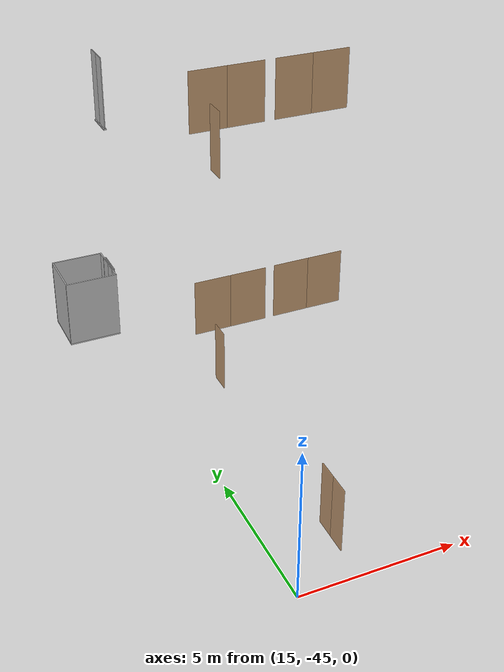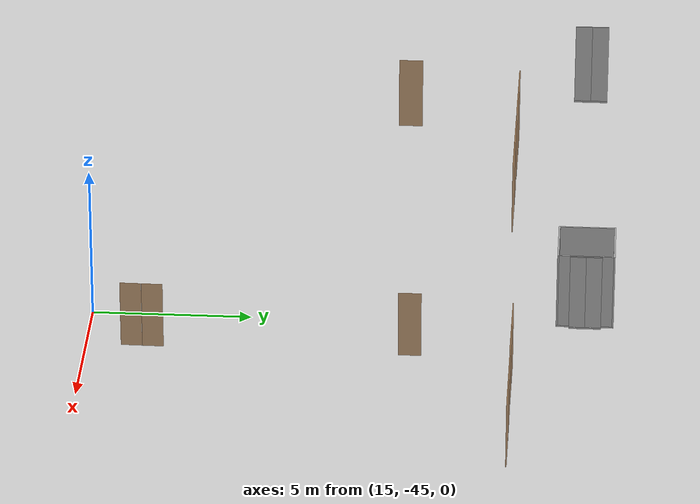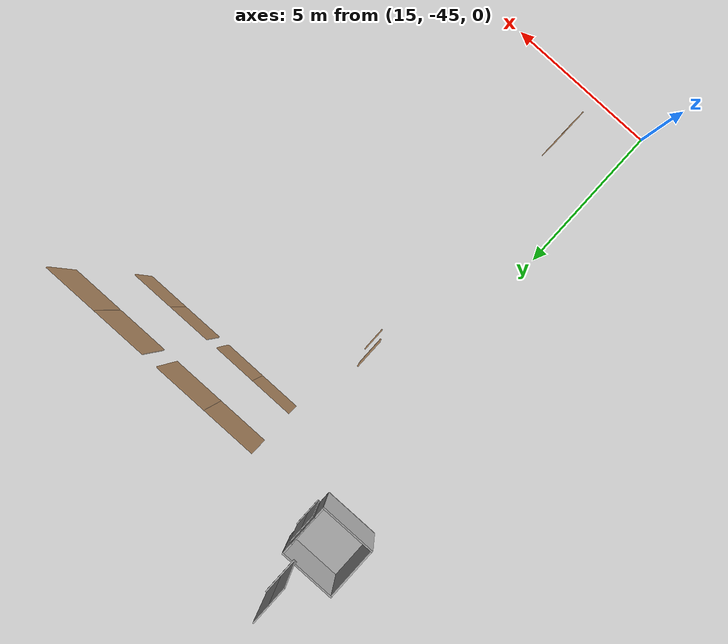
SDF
<sdf version="1.7">
 <world name="sim_world">
  <physics name="10ms" type="ode">
   <max_step_size>0.01</max_step_size>
   <real_time_factor>1.0</real_time_factor>
  </physics>
  <plugin filename="libgz-sim-physics-system.so" name="gz::sim::systems::Physics"/>
  <plugin filename="libgz-sim-user-commands-system.so" name="gz::sim::systems::UserCommands"/>
  <plugin filename="libgz-sim-scene-broadcaster-system.so" name="gz::sim::systems::SceneBroadcaster"/>
  <plugin filename="libdoor.so" name="door"/>
  <plugin filename="liblift.so" name="lift"/>
  <scene><ambient>1 1 1</ambient><background>0.8 0.8 0.8</background><grid>false</grid></scene>
  <light type="directional" name="sun">
   <pose>0 0 10 0 0 0</pose>
   <diffuse>1 1 1 1</diffuse>
   <specular>0.2 0.2 0.2 1</specular>
   <attenuation>
    <range>1000</range>
    <constant>0.09</constant>
    <linear>0.001</linear>
    <quadratic>0.001</quadratic>
   </attenuation>
   <direction>-0.5 0.1 -0.9</direction>
  </light>
  <model name="door1">
   <pose>18.842917974145337 -31.723924154567847 0.0 0 0 -0.003592788182383454</pose>
   <link name="right">
    <pose>0.7104158282135676 0 1.11 0 0 0</pose>
    <visual name="right_visual">
     <geometry><box><size>1.4108316564271353 0.03 2.2</size></box></geometry>
     <material>
      <ambient>0.5 0.25 0 0.6</ambient>
      <diffuse>0.5 0.25 0 0.6</diffuse>
      <pbr><metal><metalness>0.0</metalness></metal></pbr>
     </material>
    </visual>
    <collision name="right_collision">
     <geometry><box><size>1.4108316564271353 0.03 2.2</size></box></geometry>
     <surface><contact><collide_bitmask>0x02</collide_bitmask></contact></surface>
    </collision>
    <inertial>
     <mass>50.0</mass>
     <inertia><ixx>20.17041666666667</ixx><iyy>28.460191511570564</iyy><izz>8.297274844903892</izz></inertia>
    </inertial>
   </link>
   <joint name="right_joint" type="revolute">
    <parent>world</parent>
    <child>right</child>
    <axis><xyz>0 0 1</xyz><limit><lower>0</lower><upper>1.57</upper></limit></axis>
    <pose>0.7104158282135676 0 0 0 0 0</pose>
   </joint>
   <link name="left">
    <pose>-0.7104158282135676 0 1.11 0 0 0</pose>
    <visual name="left_visual">
     <geometry><box><size>1.4108316564271353 0.03 2.2</size></box></geometry>
     <material>
      <ambient>0.5 0.25 0 0.6</ambient>
      <diffuse>0.5 0.25 0 0.6</diffuse>
      <pbr><metal><metalness>0.0</metalness></metal></pbr>
     </material>
    </visual>
    <collision name="left_collision">
     <geometry><box><size>1.4108316564271353 0.03 2.2</size></box></geometry>
     <surface><contact><collide_bitmask>0x02</collide_bitmask></contact></surface>
    </collision>
    <inertial>
     <mass>50.0</mass>
     <inertia><ixx>20.17041666666667</ixx><iyy>28.460191511570564</iyy><izz>8.297274844903892</izz></inertia>
    </inertial>
   </link>
   <joint name="left_joint" type="revolute">
    <parent>world</parent>
    <child>left</child>
    <axis><xyz>0 0 1</xyz><limit><lower>-1.57</lower><upper>0</upper></limit></axis>
    <pose>-0.7104158282135676 0 0 0 0 0</pose>
   </joint>
   <plugin name="register_component" filename="libregister_component.so">
    <component name="Door">
     <v_max_door>0.5</v_max_door>
     <a_max_door>0.3</a_max_door>
     <a_nom_door>0.15</a_nom_door>
     <dx_min_door>0.01</dx_min_door>
     <f_max_door>500.0</f_max_door>
     <ros_interface>true</ros_interface>
     <door name="door1" type="DoubleSwingDoor" left_joint_name="left_joint" right_joint_name="right_joint"/>
    </component>
   </plugin>
  </model>
  <model name="door2">
   <pose>22.032232399162368 -31.718819418365594 0.0 0 0 3.141592653589793</pose>
   <link name="right">
    <pose>0.707604274739194 0 1.11 0 0 0</pose>
    <visual name="right_visual">
     <geometry><box><size>1.405208549478388 0.03 2.2</size></box></geometry>
     <material>
      <ambient>0.5 0.25 0 0.6</ambient>
      <diffuse>0.5 0.25 0 0.6</diffuse>
      <pbr><metal><metalness>0.0</metalness></metal></pbr>
     </material>
    </visual>
    <collision name="right_collision">
     <geometry><box><size>1.405208549478388 0.03 2.2</size></box></geometry>
     <surface><contact><collide_bitmask>0x02</collide_bitmask></contact></surface>
    </collision>
    <inertial>
     <mass>50.0</mass>
     <inertia><ixx>20.17041666666667</ixx><iyy>28.39421278136315</iyy><izz>8.231296114696478</izz></inertia>
    </inertial>
   </link>
   <joint name="right_joint" type="revolute">
    <parent>world</parent>
    <child>right</child>
    <axis><xyz>0 0 -1</xyz><limit><lower>0</lower><upper>1.57</upper></limit></axis>
    <pose>0.707604274739194 0 0 0 0 0</pose>
   </joint>
   <link name="left">
    <pose>-0.707604274739194 0 1.11 0 0 0</pose>
    <visual name="left_visual">
     <geometry><box><size>1.405208549478388 0.03 2.2</size></box></geometry>
     <material>
      <ambient>0.5 0.25 0 0.6</ambient>
      <diffuse>0.5 0.25 0 0.6</diffuse>
      <pbr><metal><metalness>0.0</metalness></metal></pbr>
     </material>
    </visual>
    <collision name="left_collision">
     <geometry><box><size>1.405208549478388 0.03 2.2</size></box></geometry>
     <surface><contact><collide_bitmask>0x02</collide_bitmask></contact></surface>
    </collision>
    <inertial>
     <mass>50.0</mass>
     <inertia><ixx>20.17041666666667</ixx><iyy>28.39421278136315</iyy><izz>8.231296114696478</izz></inertia>
    </inertial>
   </link>
   <joint name="left_joint" type="revolute">
    <parent>world</parent>
    <child>left</child>
    <axis><xyz>0 0 -1</xyz><limit><lower>-1.57</lower><upper>0</upper></limit></axis>
    <pose>-0.707604274739194 0 0 0 0 0</pose>
   </joint>
   <plugin name="register_component" filename="libregister_component.so">
    <component name="Door">
     <v_max_door>0.5</v_max_door>
     <a_max_door>0.3</a_max_door>
     <a_nom_door>0.15</a_nom_door>
     <dx_min_door>0.01</dx_min_door>
     <f_max_door>500.0</f_max_door>
     <ros_interface>true</ros_interface>
     <door name="door2" type="DoubleSwingDoor" left_joint_name="left_joint" right_joint_name="right_joint"/>
    </component>
   </plugin>
  </model>
  <model name="door3">
   <pose>17.041875385878594 -34.91931079696262 0.0 0 0 1.5707963267948966</pose>
   <link name="right">
    <pose>0 0 1.11 0 0 0</pose>
    <visual name="right_visual">
     <geometry><box><size>0.7135486191115683 0.03 2.2</size></box></geometry>
     <material>
      <ambient>0.5 0.25 0 0.6</ambient>
      <diffuse>0.5 0.25 0 0.6</diffuse>
      <pbr><metal><metalness>0.0</metalness></metal></pbr>
     </material>
    </visual>
    <collision name="right_collision">
     <geometry><box><size>0.7135486191115683 0.03 2.2</size></box></geometry>
     <surface><contact><collide_bitmask>0x02</collide_bitmask></contact></surface>
    </collision>
    <inertial>
     <mass>50.0</mass>
     <inertia><ixx>20.17041666666667</ixx><iyy>22.28813179931678</iyy><izz>2.1252151326501085</izz></inertia>
    </inertial>
   </link>
   <joint name="right_joint" type="revolute">
    <parent>world</parent>
    <child>right</child>
    <axis><xyz>0 0 1</xyz><limit><lower>0</lower><upper>1.57</upper></limit></axis>
    <pose>0.36177430955578416 0 0 0 0 0</pose>
   </joint>
   <plugin name="register_component" filename="libregister_component.so">
    <component name="Door">
     <v_max_door>0.5</v_max_door>
     <a_max_door>0.3</a_max_door>
     <a_nom_door>0.15</a_nom_door>
     <dx_min_door>0.01</dx_min_door>
     <f_max_door>500.0</f_max_door>
     <ros_interface>true</ros_interface>
     <door name="door3" type="SwingDoor" left_joint_name="empty_joint" right_joint_name="right_joint"/>
    </component>
   </plugin>
  </model>
  <model name="door4">
   <pose>16.944503497571752 -43.24904365758805 0.0 0 0 1.5541321529719907</pose>
   <link name="right">
    <pose>0.33499231367601323 0 1.11 0 0 0</pose>
    <visual name="right_visual">
     <geometry><box><size>0.6599846273520265 0.03 2.2</size></box></geometry>
     <material>
      <ambient>0.5 0.25 0 0.6</ambient>
      <diffuse>0.5 0.25 0 0.6</diffuse>
      <pbr><metal><metalness>0.0</metalness></metal></pbr>
     </material>
    </visual>
    <collision name="right_collision">
     <geometry><box><size>0.6599846273520265 0.03 2.2</size></box></geometry>
     <surface><contact><collide_bitmask>0x02</collide_bitmask></contact></surface>
    </collision>
    <inertial>
     <mass>50.0</mass>
     <inertia><ixx>20.17041666666667</ixx><iyy>21.981582118087477</iyy><izz>1.8186654514208054</izz></inertia>
    </inertial>
   </link>
   <joint name="right_joint" type="revolute">
    <parent>world</parent>
    <child>right</child>
    <axis><xyz>0 0 1</xyz><limit><lower>0</lower><upper>1.57</upper></limit></axis>
    <pose>0.33499231367601323 0 0 0 0 0</pose>
   </joint>
   <link name="left">
    <pose>-0.33499231367601323 0 1.11 0 0 0</pose>
    <visual name="left_visual">
     <geometry><box><size>0.6599846273520265 0.03 2.2</size></box></geometry>
     <material>
      <ambient>0.5 0.25 0 0.6</ambient>
      <diffuse>0.5 0.25 0 0.6</diffuse>
      <pbr><metal><metalness>0.0</metalness></metal></pbr>
     </material>
    </visual>
    <collision name="left_collision">
     <geometry><box><size>0.6599846273520265 0.03 2.2</size></box></geometry>
     <surface><contact><collide_bitmask>0x02</collide_bitmask></contact></surface>
    </collision>
    <inertial>
     <mass>50.0</mass>
     <inertia><ixx>20.17041666666667</ixx><iyy>21.981582118087477</iyy><izz>1.8186654514208054</izz></inertia>
    </inertial>
   </link>
   <joint name="left_joint" type="revolute">
    <parent>world</parent>
    <child>left</child>
    <axis><xyz>0 0 1</xyz><limit><lower>-1.57</lower><upper>0</upper></limit></axis>
    <pose>-0.33499231367601323 0 0 0 0 0</pose>
   </joint>
   <plugin name="register_component" filename="libregister_component.so">
    <component name="Door">
     <v_max_door>0.5</v_max_door>
     <a_max_door>0.3</a_max_door>
     <a_nom_door>0.15</a_nom_door>
     <dx_min_door>0.01</dx_min_door>
     <f_max_door>500.0</f_max_door>
     <ros_interface>true</ros_interface>
     <door name="door4" type="DoubleSwingDoor" left_joint_name="left_joint" right_joint_name="right_joint"/>
    </component>
   </plugin>
  </model>
  <model name="door6">
   <pose>18.78676646756648 -31.65727521792319 8.0 0 0 -0.0021800277771673146</pose>
   <link name="right">
    <pose>0.7002427573334377 0 1.11 0 0 0</pose>
    <visual name="right_visual">
     <geometry><box><size>1.3904855146668753 0.03 2.2</size></box></geometry>
     <material>
      <ambient>0.5 0.25 0 0.6</ambient>
      <diffuse>0.5 0.25 0 0.6</diffuse>
      <pbr><metal><metalness>0.0</metalness></metal></pbr>
     </material>
    </visual>
    <collision name="right_collision">
     <geometry><box><size>1.3904855146668753 0.03 2.2</size></box></geometry>
     <surface><contact><collide_bitmask>0x02</collide_bitmask></contact></surface>
    </collision>
    <inertial>
     <mass>50.0</mass>
     <inertia><ixx>20.17041666666667</ixx><iyy>28.22270819374336</iyy><izz>8.059791527076689</izz></inertia>
    </inertial>
   </link>
   <joint name="right_joint" type="revolute">
    <parent>world</parent>
    <child>right</child>
    <axis><xyz>0 0 1</xyz><limit><lower>0</lower><upper>1.57</upper></limit></axis>
    <pose>0.7002427573334377 0 0 0 0 0</pose>
   </joint>
   <link name="left">
    <pose>-0.7002427573334377 0 1.11 0 0 0</pose>
    <visual name="left_visual">
     <geometry><box><size>1.3904855146668753 0.03 2.2</size></box></geometry>
     <material>
      <ambient>0.5 0.25 0 0.6</ambient>
      <diffuse>0.5 0.25 0 0.6</diffuse>
      <pbr><metal><metalness>0.0</metalness></metal></pbr>
     </material>
    </visual>
    <collision name="left_collision">
     <geometry><box><size>1.3904855146668753 0.03 2.2</size></box></geometry>
     <surface><contact><collide_bitmask>0x02</collide_bitmask></contact></surface>
    </collision>
    <inertial>
     <mass>50.0</mass>
     <inertia><ixx>20.17041666666667</ixx><iyy>28.22270819374336</iyy><izz>8.059791527076689</izz></inertia>
    </inertial>
   </link>
   <joint name="left_joint" type="revolute">
    <parent>world</parent>
    <child>left</child>
    <axis><xyz>0 0 1</xyz><limit><lower>-1.57</lower><upper>0</upper></limit></axis>
    <pose>-0.7002427573334377 0 0 0 0 0</pose>
   </joint>
   <plugin name="register_component" filename="libregister_component.so">
    <component name="Door">
     <v_max_door>0.5</v_max_door>
     <a_max_door>0.3</a_max_door>
     <a_nom_door>0.15</a_nom_door>
     <dx_min_door>0.01</dx_min_door>
     <f_max_door>500.0</f_max_door>
     <ros_interface>true</ros_interface>
     <door name="door6" type="DoubleSwingDoor" left_joint_name="left_joint" right_joint_name="right_joint"/>
    </component>
   </plugin>
  </model>
  <model name="door7">
   <pose>21.99220717025463 -31.66426317876326 8.0 0 0 3.1394126258126276</pose>
   <link name="right">
    <pose>0.7068090716638525 0 1.11 0 0 0</pose>
    <visual name="right_visual">
     <geometry><box><size>1.403618143327705 0.03 2.2</size></box></geometry>
     <material>
      <ambient>0.5 0.25 0 0.6</ambient>
      <diffuse>0.5 0.25 0 0.6</diffuse>
      <pbr><metal><metalness>0.0</metalness></metal></pbr>
     </material>
    </visual>
    <collision name="right_collision">
     <geometry><box><size>1.403618143327705 0.03 2.2</size></box></geometry>
     <surface><contact><collide_bitmask>0x02</collide_bitmask></contact></surface>
    </collision>
    <inertial>
     <mass>50.0</mass>
     <inertia><ixx>20.17041666666667</ixx><iyy>28.375599551161315</iyy><izz>8.212682884494642</izz></inertia>
    </inertial>
   </link>
   <joint name="right_joint" type="revolute">
    <parent>world</parent>
    <child>right</child>
    <axis><xyz>0 0 -1</xyz><limit><lower>0</lower><upper>1.57</upper></limit></axis>
    <pose>0.7068090716638525 0 0 0 0 0</pose>
   </joint>
   <link name="left">
    <pose>-0.7068090716638525 0 1.11 0 0 0</pose>
    <visual name="left_visual">
     <geometry><box><size>1.403618143327705 0.03 2.2</size></box></geometry>
     <material>
      <ambient>0.5 0.25 0 0.6</ambient>
      <diffuse>0.5 0.25 0 0.6</diffuse>
      <pbr><metal><metalness>0.0</metalness></metal></pbr>
     </material>
    </visual>
    <collision name="left_collision">
     <geometry><box><size>1.403618143327705 0.03 2.2</size></box></geometry>
     <surface><contact><collide_bitmask>0x02</collide_bitmask></contact></surface>
    </collision>
    <inertial>
     <mass>50.0</mass>
     <inertia><ixx>20.17041666666667</ixx><iyy>28.375599551161315</iyy><izz>8.212682884494642</izz></inertia>
    </inertial>
   </link>
   <joint name="left_joint" type="revolute">
    <parent>world</parent>
    <child>left</child>
    <axis><xyz>0 0 -1</xyz><limit><lower>-1.57</lower><upper>0</upper></limit></axis>
    <pose>-0.7068090716638525 0 0 0 0 0</pose>
   </joint>
   <plugin name="register_component" filename="libregister_component.so">
    <component name="Door">
     <v_max_door>0.5</v_max_door>
     <a_max_door>0.3</a_max_door>
     <a_nom_door>0.15</a_nom_door>
     <dx_min_door>0.01</dx_min_door>
     <f_max_door>500.0</f_max_door>
     <ros_interface>true</ros_interface>
     <door name="door7" type="DoubleSwingDoor" left_joint_name="left_joint" right_joint_name="right_joint"/>
    </component>
   </plugin>
  </model>
  <model name="door5">
   <pose>16.954624670447203 -34.931011413418545 8.0 0 0 1.568616299017729</pose>
   <link name="right">
    <pose>0 0 1.11 0 0 0</pose>
    <visual name="right_visual">
     <geometry><box><size>0.7084200033328207 0.03 2.2</size></box></geometry>
     <material>
      <ambient>0.5 0.25 0 0.6</ambient>
      <diffuse>0.5 0.25 0 0.6</diffuse>
      <pbr><metal><metalness>0.0</metalness></metal></pbr>
     </material>
    </visual>
    <collision name="right_collision">
     <geometry><box><size>0.7084200033328207 0.03 2.2</size></box></geometry>
     <surface><contact><collide_bitmask>0x02</collide_bitmask></contact></surface>
    </collision>
    <inertial>
     <mass>50.0</mass>
     <inertia><ixx>20.17041666666667</ixx><iyy>22.25774542134198</iyy><izz>2.0948287546753077</izz></inertia>
    </inertial>
   </link>
   <joint name="right_joint" type="revolute">
    <parent>world</parent>
    <child>right</child>
    <axis><xyz>0 0 1</xyz><limit><lower>0</lower><upper>1.57</upper></limit></axis>
    <pose>0.3592100016664104 0 0 0 0 0</pose>
   </joint>
   <plugin name="register_component" filename="libregister_component.so">
    <component name="Door">
     <v_max_door>0.5</v_max_door>
     <a_max_door>0.3</a_max_door>
     <a_nom_door>0.15</a_nom_door>
     <dx_min_door>0.01</dx_min_door>
     <f_max_door>500.0</f_max_door>
     <ros_interface>true</ros_interface>
     <door name="door5" type="SwingDoor" left_joint_name="empty_joint" right_joint_name="right_joint"/>
    </component>
   </plugin>
  </model>
  <model name="ShaftDoor_lift_L1_doors">
   <pose>14.952096951797797 -29.533635883367598 0.0 0 0 1.5707</pose>
   <link name="right_door">
    <pose>0.25 0 1.25 0 0 0</pose>
    <visual name="right_door_visual">
     <geometry><box><size>0.5 0.03 2.5</size></box></geometry>
     <material>
      <ambient>0.5 0.5 0.5 1</ambient>
      <diffuse>0.7 0.7 0.7 1</diffuse>
      <specular>0.6 0.6 0.6 1</specular>
      <emissive>0.1 0.1 0.1 1</emissive>
     </material>
    </visual>
    <collision name="right_door_collision">
     <geometry><box><size>0.5 0.03 2.5</size></box></geometry>
     <surface><contact><collide_bitmask>0x02</collide_bitmask></contact></surface>
    </collision>
   </link>
   <link name="left_door">
    <pose>-0.25 0 1.25 0 0 0</pose>
    <visual name="left_door_visual">
     <geometry><box><size>0.5 0.03 2.5</size></box></geometry>
     <material>
      <ambient>0.5 0.5 0.5 1</ambient>
      <diffuse>0.7 0.7 0.7 1</diffuse>
      <specular>0.6 0.6 0.6 1</specular>
      <emissive>0.1 0.1 0.1 1</emissive>
     </material>
    </visual>
    <collision name="left_door_collision">
     <geometry><box><size>0.5 0.03 2.5</size></box></geometry>
     <surface><contact><collide_bitmask>0x02</collide_bitmask></contact></surface>
    </collision>
   </link>
   <joint name="right_joint" type="prismatic">
    <parent>world</parent>
    <child>right_door</child>
    <axis><xyz>1 0 0</xyz><limit><lower>0</lower><upper>0.5</upper></limit></axis>
   </joint>
   <joint name="left_joint" type="prismatic">
    <parent>world</parent>
    <child>left_door</child>
    <axis><xyz>1 0 0</xyz><limit><lower>-0.5</lower><upper>0</upper></limit></axis>
   </joint>
   <link name="ramp">
    <pose>0 0 -0.025 0 0 0</pose>
    <visual name="ramp_visual">
     <geometry><box><size>1.0 0.1 0.05</size></box></geometry>
     <material>
      <ambient>0.5 0.5 0.5 1</ambient>
      <diffuse>0.7 0.7 0.7 1</diffuse>
      <specular>0.6 0.6 0.6 1</specular>
      <emissive>0.1 0.1 0.1 1</emissive>
     </material>
    </visual>
    <collision name="ramp_collision">
     <geometry><box><size>1.0 0.1 0.05</size></box></geometry>
     <surface><contact><collide_bitmask>0x02</collide_bitmask></contact></surface>
    </collision>
   </link>
   <joint name="ramp_joint" type="fixed"><parent>world</parent><child>ramp</child></joint>
   <plugin name="register_component" filename="libregister_component.so">
    <component name="Door">
     <v_max_door>0.3</v_max_door>
     <a_max_door>0.2</a_max_door>
     <a_nom_door>0.1</a_nom_door>
     <dx_min_door>0.0001</dx_min_door>
     <f_max_door>35.0</f_max_door>
     <door left_joint_name="left_joint" name="ShaftDoor_lift_L1_doors" right_joint_name="right_joint" type="DoubleSlidingDoor"/>
    </component>
   </plugin>
  </model>
  <model name="ShaftDoor_lift_L2_doors">
   <pose>14.952096951797797 -29.533635883367598 8.0 0 0 1.5707</pose>
   <link name="right_door">
    <pose>0.25 0 1.25 0 0 0</pose>
    <visual name="right_door_visual">
     <geometry><box><size>0.5 0.03 2.5</size></box></geometry>
     <material>
      <ambient>0.5 0.5 0.5 1</ambient>
      <diffuse>0.7 0.7 0.7 1</diffuse>
      <specular>0.6 0.6 0.6 1</specular>
      <emissive>0.1 0.1 0.1 1</emissive>
     </material>
    </visual>
    <collision name="right_door_collision">
     <geometry><box><size>0.5 0.03 2.5</size></box></geometry>
     <surface><contact><collide_bitmask>0x02</collide_bitmask></contact></surface>
    </collision>
   </link>
   <link name="left_door">
    <pose>-0.25 0 1.25 0 0 0</pose>
    <visual name="left_door_visual">
     <geometry><box><size>0.5 0.03 2.5</size></box></geometry>
     <material>
      <ambient>0.5 0.5 0.5 1</ambient>
      <diffuse>0.7 0.7 0.7 1</diffuse>
      <specular>0.6 0.6 0.6 1</specular>
      <emissive>0.1 0.1 0.1 1</emissive>
     </material>
    </visual>
    <collision name="left_door_collision">
     <geometry><box><size>0.5 0.03 2.5</size></box></geometry>
     <surface><contact><collide_bitmask>0x02</collide_bitmask></contact></surface>
    </collision>
   </link>
   <joint name="right_joint" type="prismatic">
    <parent>world</parent>
    <child>right_door</child>
    <axis><xyz>1 0 0</xyz><limit><lower>0</lower><upper>0.5</upper></limit></axis>
   </joint>
   <joint name="left_joint" type="prismatic">
    <parent>world</parent>
    <child>left_door</child>
    <axis><xyz>1 0 0</xyz><limit><lower>-0.5</lower><upper>0</upper></limit></axis>
   </joint>
   <link name="ramp">
    <pose>0 0 -0.025 0 0 0</pose>
    <visual name="ramp_visual">
     <geometry><box><size>1.0 0.1 0.05</size></box></geometry>
     <material>
      <ambient>0.5 0.5 0.5 1</ambient>
      <diffuse>0.7 0.7 0.7 1</diffuse>
      <specular>0.6 0.6 0.6 1</specular>
      <emissive>0.1 0.1 0.1 1</emissive>
     </material>
    </visual>
    <collision name="ramp_collision">
     <geometry><box><size>1.0 0.1 0.05</size></box></geometry>
     <surface><contact><collide_bitmask>0x02</collide_bitmask></contact></surface>
    </collision>
   </link>
   <joint name="ramp_joint" type="fixed"><parent>world</parent><child>ramp</child></joint>
   <plugin name="register_component" filename="libregister_component.so">
    <component name="Door">
     <v_max_door>0.3</v_max_door>
     <a_max_door>0.2</a_max_door>
     <a_nom_door>0.1</a_nom_door>
     <dx_min_door>0.0001</dx_min_door>
     <f_max_door>35.0</f_max_door>
     <door left_joint_name="left_joint" name="ShaftDoor_lift_L2_doors" right_joint_name="right_joint" type="DoubleSlidingDoor"/>
    </component>
   </plugin>
  </model>
  <model name="lift">
   <link name="platform">
    <inertial><mass>1200</mass><inertia><ixx>361.25</ixx><iyy>324.25</iyy><izz>685.0</izz></inertia></inertial>
    <visual name="floor_visual">
     <pose>0 0 -0.025 0 0 0</pose>
     <geometry><box><size>1.9 1.8 0.05</size></box></geometry>
     <material>
      <ambient>0.5 0.5 0.5 1</ambient>
      <diffuse>0.7 0.7 0.7 1</diffuse>
      <specular>0.6 0.6 0.6 1</specular>
      <emissive>0.1 0.1 0.1 1</emissive>
     </material>
    </visual>
    <collision name="floor_collision">
     <pose>0 0 -0.025 0 0 0</pose>
     <geometry><box><size>1.9 1.8 0.05</size></box></geometry>
     <surface><contact><collide_bitmask>0x01</collide_bitmask></contact></surface>
    </collision>
    <visual name="frontwall1_visual">
     <pose>0.0 0.875 1.25 0 0 0</pose>
     <geometry><box><size>1.9 0.05 2.5</size></box></geometry>
     <material>
      <ambient>0.5 0.5 0.5 1</ambient>
      <diffuse>0.7 0.7 0.7 1</diffuse>
      <specular>0.6 0.6 0.6 1</specular>
      <emissive>0.1 0.1 0.1 1</emissive>
     </material>
    </visual>
    <collision name="frontwall1_collision">
     <pose>0.0 0.875 1.25 0 0 0</pose>
     <geometry><box><size>1.9 0.05 2.5</size></box></geometry>
     <surface><contact><collide_bitmask>0x01</collide_bitmask></contact></surface>
    </collision>
    <visual name="backwall1_visual">
     <pose>0.0 -0.875 1.25 0 0 0</pose>
     <geometry><box><size>1.9 0.05 2.5</size></box></geometry>
     <material>
      <ambient>0.5 0.5 0.5 1</ambient>
      <diffuse>0.7 0.7 0.7 1</diffuse>
      <specular>0.6 0.6 0.6 1</specular>
      <emissive>0.1 0.1 0.1 1</emissive>
     </material>
    </visual>
    <collision name="backwall1_collision">
     <pose>0.0 -0.875 1.25 0 0 0</pose>
     <geometry><box><size>1.9 0.05 2.5</size></box></geometry>
     <surface><contact><collide_bitmask>0x01</collide_bitmask></contact></surface>
    </collision>
    <visual name="leftwall1_visual">
     <pose>-0.9249999999999999 0.0 1.25 0 0 1.5707963267948966</pose>
     <geometry><box><size>1.7 0.05 2.5</size></box></geometry>
     <material>
      <ambient>0.5 0.5 0.5 1</ambient>
      <diffuse>0.7 0.7 0.7 1</diffuse>
      <specular>0.6 0.6 0.6 1</specular>
      <emissive>0.1 0.1 0.1 1</emissive>
     </material>
    </visual>
    <collision name="leftwall1_collision">
     <pose>-0.9249999999999999 0.0 1.25 0 0 1.5707963267948966</pose>
     <geometry><box><size>1.7 0.05 2.5</size></box></geometry>
     <surface><contact><collide_bitmask>0x01</collide_bitmask></contact></surface>
    </collision>
    <visual name="rightwall1_visual">
     <pose>0.9249999999999999 -0.675 1.25 0 0 1.5707963267948966</pose>
     <geometry><box><size>0.35 0.05 2.5</size></box></geometry>
     <material>
      <ambient>0.5 0.5 0.5 1</ambient>
      <diffuse>0.7 0.7 0.7 1</diffuse>
      <specular>0.6 0.6 0.6 1</specular>
      <emissive>0.1 0.1 0.1 1</emissive>
     </material>
    </visual>
    <collision name="rightwall1_collision">
     <pose>0.9249999999999999 -0.675 1.25 0 0 1.5707963267948966</pose>
     <geometry><box><size>0.35 0.05 2.5</size></box></geometry>
     <surface><contact><collide_bitmask>0x01</collide_bitmask></contact></surface>
    </collision>
    <visual name="rightwall2_visual">
     <pose>0.9249999999999999 0.675 1.25 0 0 1.5707963267948966</pose>
     <geometry><box><size>0.35 0.05 2.5</size></box></geometry>
     <material>
      <ambient>0.5 0.5 0.5 1</ambient>
      <diffuse>0.7 0.7 0.7 1</diffuse>
      <specular>0.6 0.6 0.6 1</specular>
      <emissive>0.1 0.1 0.1 1</emissive>
     </material>
    </visual>
    <collision name="rightwall2_collision">
     <pose>0.9249999999999999 0.675 1.25 0 0 1.5707963267948966</pose>
     <geometry><box><size>0.35 0.05 2.5</size></box></geometry>
     <surface><contact><collide_bitmask>0x01</collide_bitmask></contact></surface>
    </collision>
   </link>
   <joint name="cabin_joint" type="prismatic">
    <parent>world</parent>
    <child>platform</child>
    <axis><xyz>0 0 1</xyz></axis>
   </joint>
   <model name="CabinDoor_lift_doors">
    <pose>0.9249999999999999 0.0 0 0 0 1.5707</pose>
    <link name="right_door">
     <pose>0.25 0 1.25 0 0 0</pose>
     <visual name="right_door_visual">
      <geometry><box><size>0.5 0.03 2.5</size></box></geometry>
      <material>
       <ambient>0.5 0.5 0.5 1</ambient>
       <diffuse>0.7 0.7 0.7 1</diffuse>
       <specular>0.6 0.6 0.6 1</specular>
       <emissive>0.1 0.1 0.1 1</emissive>
      </material>
     </visual>
     <collision name="right_door_collision">
      <geometry><box><size>0.5 0.03 2.5</size></box></geometry>
      <surface><contact><collide_bitmask>0x02</collide_bitmask></contact></surface>
     </collision>
    </link>
    <link name="left_door">
     <pose>-0.25 0 1.25 0 0 0</pose>
     <visual name="left_door_visual">
      <geometry><box><size>0.5 0.03 2.5</size></box></geometry>
      <material>
       <ambient>0.5 0.5 0.5 1</ambient>
       <diffuse>0.7 0.7 0.7 1</diffuse>
       <specular>0.6 0.6 0.6 1</specular>
       <emissive>0.1 0.1 0.1 1</emissive>
      </material>
     </visual>
     <collision name="left_door_collision">
      <geometry><box><size>0.5 0.03 2.5</size></box></geometry>
      <surface><contact><collide_bitmask>0x02</collide_bitmask></contact></surface>
     </collision>
    </link>
    <plugin name="register_component" filename="libregister_component.so">
     <component name="Door">
      <v_max_door>0.3</v_max_door>
      <a_max_door>0.2</a_max_door>
      <a_nom_door>0.1</a_nom_door>
      <dx_min_door>0.0001</dx_min_door>
      <f_max_door>35.0</f_max_door>
      <door left_joint_name="CabinDoor_lift_doors_left_joint" name="CabinDoor_lift_doors" right_joint_name="CabinDoor_lift_doors_right_joint" type="DoubleSlidingDoor"/>
     </component>
    </plugin>
   </model>
   <joint name="CabinDoor_lift_doors_right_joint" type="prismatic">
    <parent>platform</parent>
    <child>CabinDoor_lift_doors::right_door</child>
    <axis><xyz>1 0 0</xyz><limit><lower>0</lower><upper>0.5</upper></limit></axis>
   </joint>
   <joint name="CabinDoor_lift_doors_left_joint" type="prismatic">
    <parent>platform</parent>
    <child>CabinDoor_lift_doors::left_door</child>
    <axis><xyz>1 0 0</xyz><limit><lower>-0.5</lower><upper>0</upper></limit></axis>
   </joint>
   <plugin name="register_component" filename="libregister_component.so">
    <component name="Lift">
     <lift_name>lift</lift_name>
     <floor name="L1" elevation="0.0">
      <door_pair cabin_door="CabinDoor_lift_doors" shaft_door="ShaftDoor_lift_L1_doors"/>
     </floor>
     <floor name="L2" elevation="8.0">
      <door_pair cabin_door="CabinDoor_lift_doors" shaft_door="ShaftDoor_lift_L2_doors"/>
     </floor>
     <initial_floor>L1</initial_floor>
     <v_max_cabin>2.0</v_max_cabin>
     <a_max_cabin>1.2</a_max_cabin>
     <a_nom_cabin>1.0</a_nom_cabin>
     <dx_min_cabin>0.001</dx_min_cabin>
     <f_max_cabin>25323.0</f_max_cabin>
     <cabin_joint_name>cabin_joint</cabin_joint_name>
    </component>
   </plugin>
   <pose>13.952096951797797 -29.533635883367598 0 0 0 0.0</pose>
  </model>
  <rmf_charger_waypoints name="charger_waypoints">
   <rmf_vertex name="tinyRobot1_charger" x="14.045026064706668" y="-14.275108364256663" level="L1"/>
  </rmf_charger_waypoints>
 </world>
</sdf>
